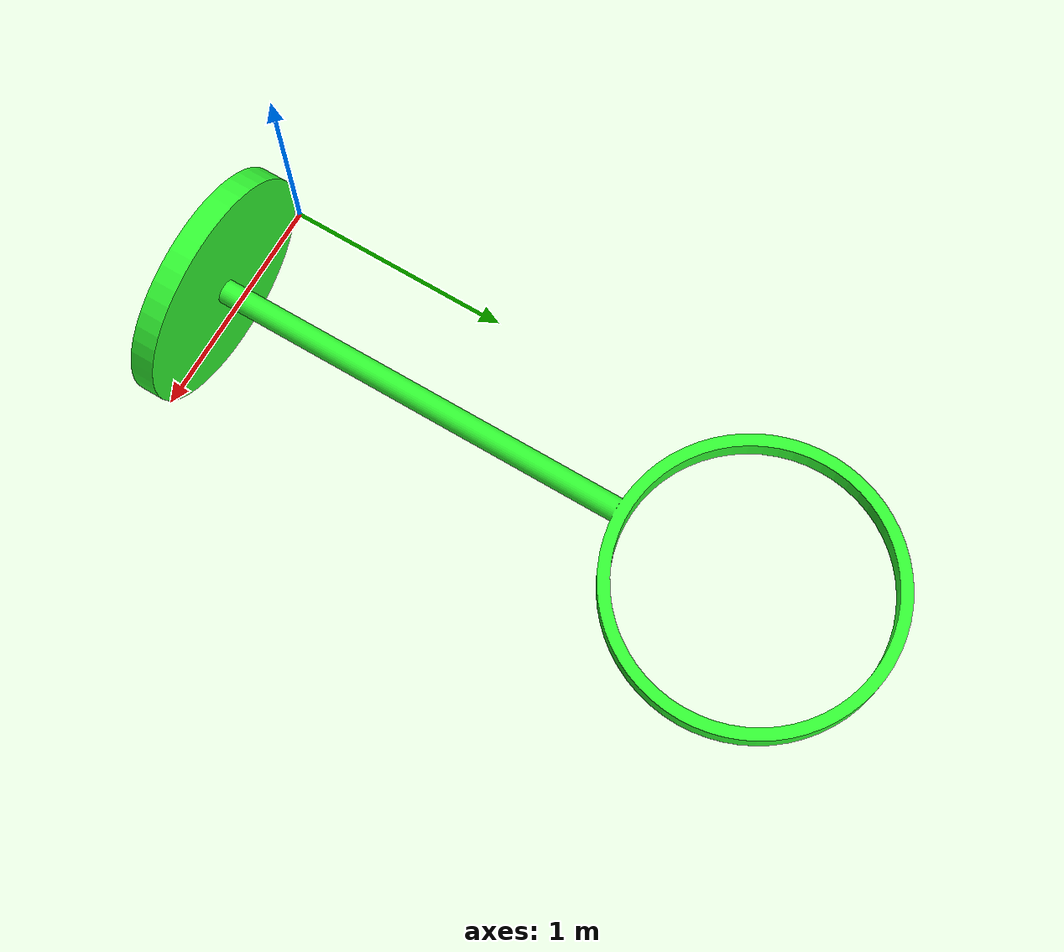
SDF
<?xml version="1.0" ?>
<sdf version="1.6">
  <model name="ring_1_8">
    <static>true</static>
    <link name="ring_link">

      <!-- Visual mesh only (visible ring model) -->
      <visual name="visual">
        <pose>0 0 0 0 0 0</pose>
        <geometry>
          <mesh>
            <uri>model://ring_1_8/meshes/ring_1_8.STL</uri>
            <scale>0.001 0.001 0.001</scale>
          </mesh>
        </geometry>
        <material>
          <ambient>0.2 0.8 0.2 1</ambient>
          <diffuse>0.2 1.0 0.2 1</diffuse>
        </material>
      </visual>

      <!-- Virtual collision zone for detecting pass-through without physical blocking -->
      <collision name="collision">
        <pose>0 0 0 0 0 0</pose>
        <geometry>
          <cylinder>
            <radius>0.1</radius>     <!-- 20 cm wide -->
            <length>0.05</length>    <!-- 5 cm thick -->
          </cylinder>
        </geometry>
        <surface>
          <contact>
            <collide_bitmask>0</collide_bitmask> <!-- Disable physical collisions -->
          </contact>
          <bounce>
            <restitution_coefficient>0.0</restitution_coefficient> <!-- No bounce -->
          </bounce>
          <friction>
            <ode>
              <mu>0.0</mu>
              <mu2>0.0</mu2> <!-- No friction -->
            </ode>
          </friction>
        </surface>
      </collision>

      <!-- Contact sensor to detect when UAV passes through the virtual zone -->
      <sensor name="ring_contact_sensor" type="contact">
        <always_on>true</always_on>
        <update_rate>50</update_rate>
        <contact>
          <collision>collision</collision>
        </contact>
        <plugin name="gazebo_ros_contact" filename="libgazebo_ros_contact.so">
          <ros_topic>/ring_1_8/contact</ros_topic>
        </plugin>
      </sensor>

    </link>
  </model>
</sdf>
